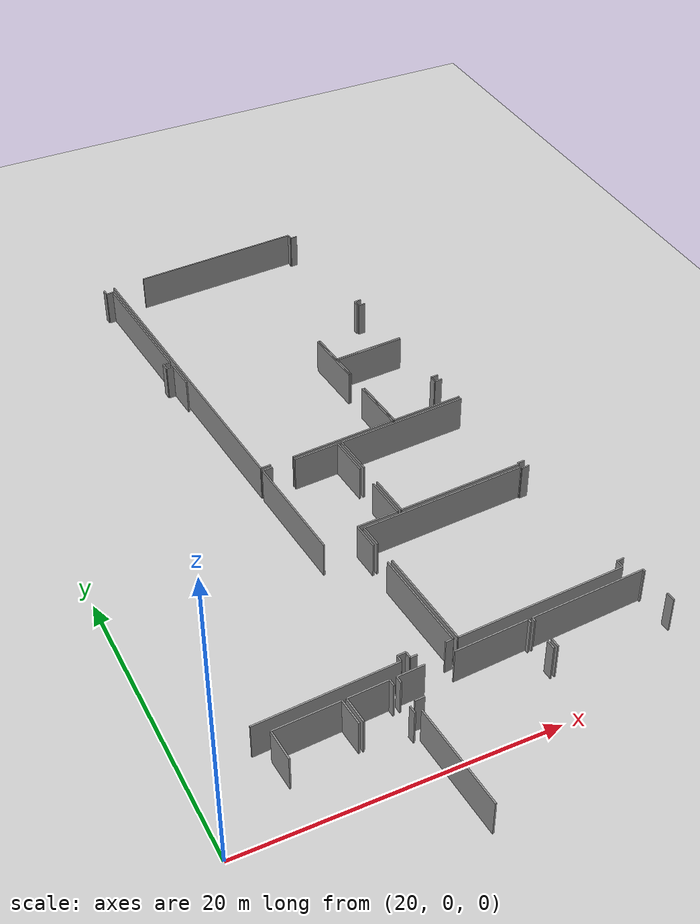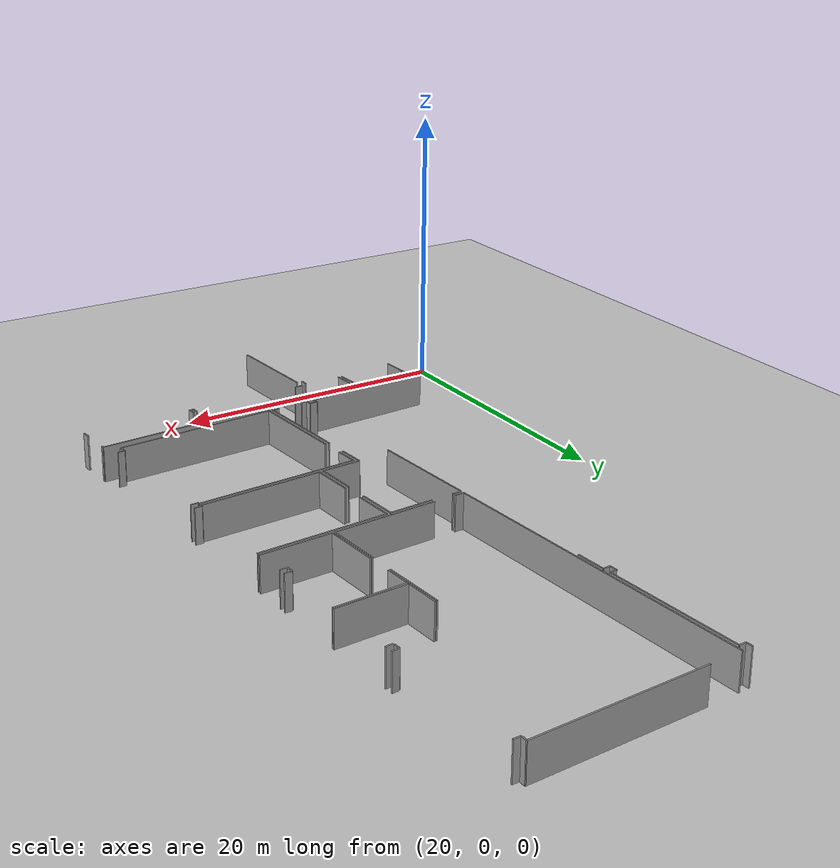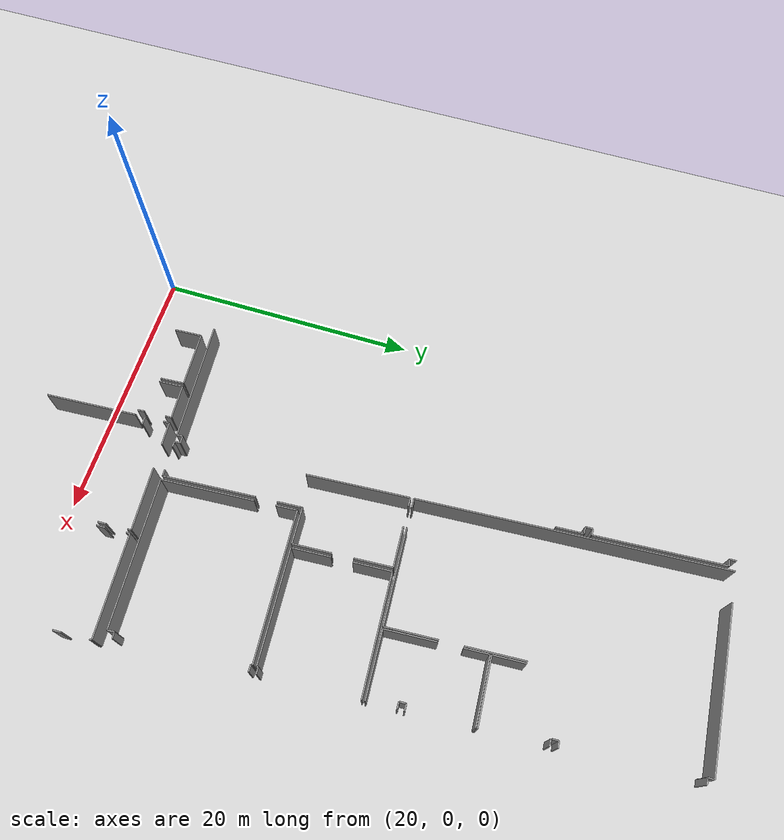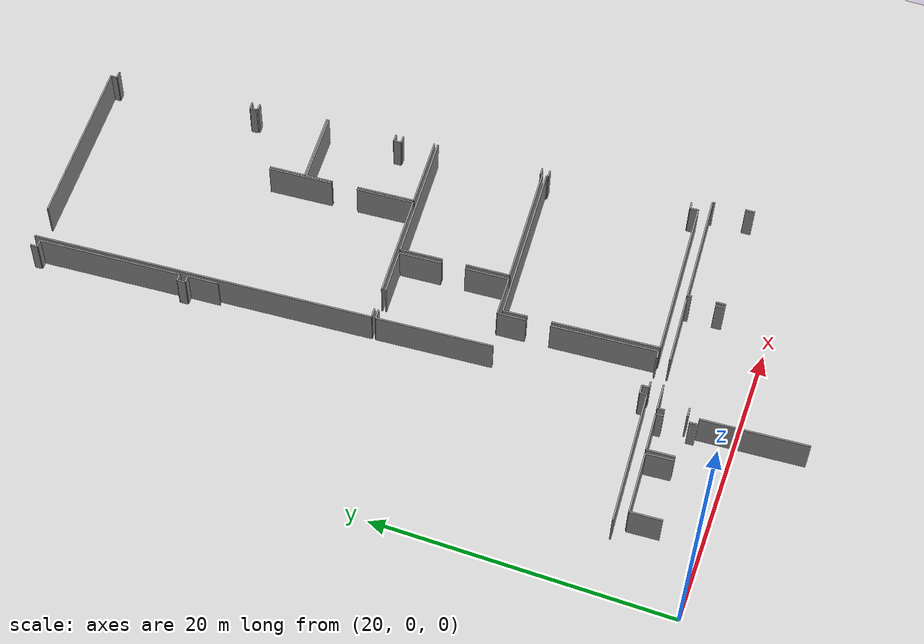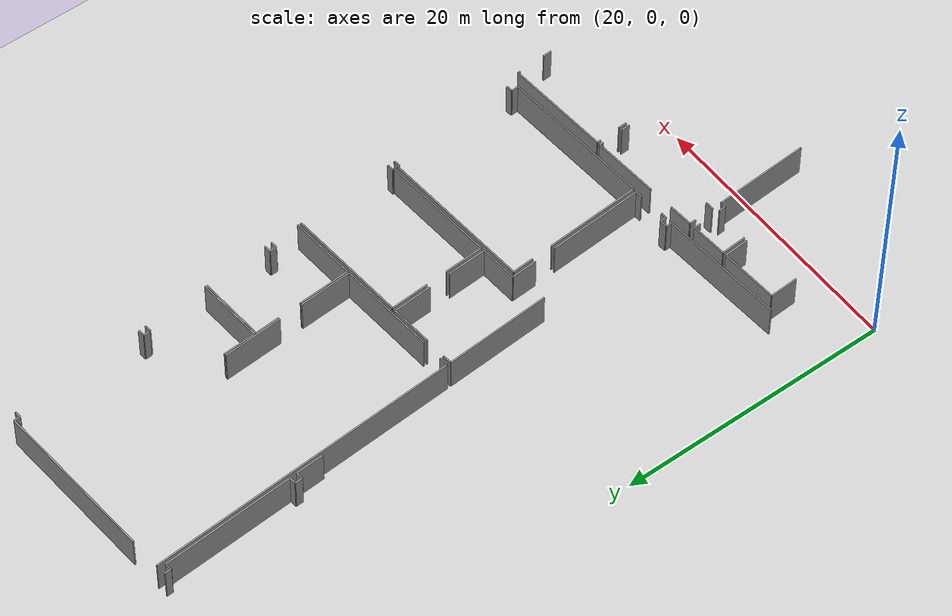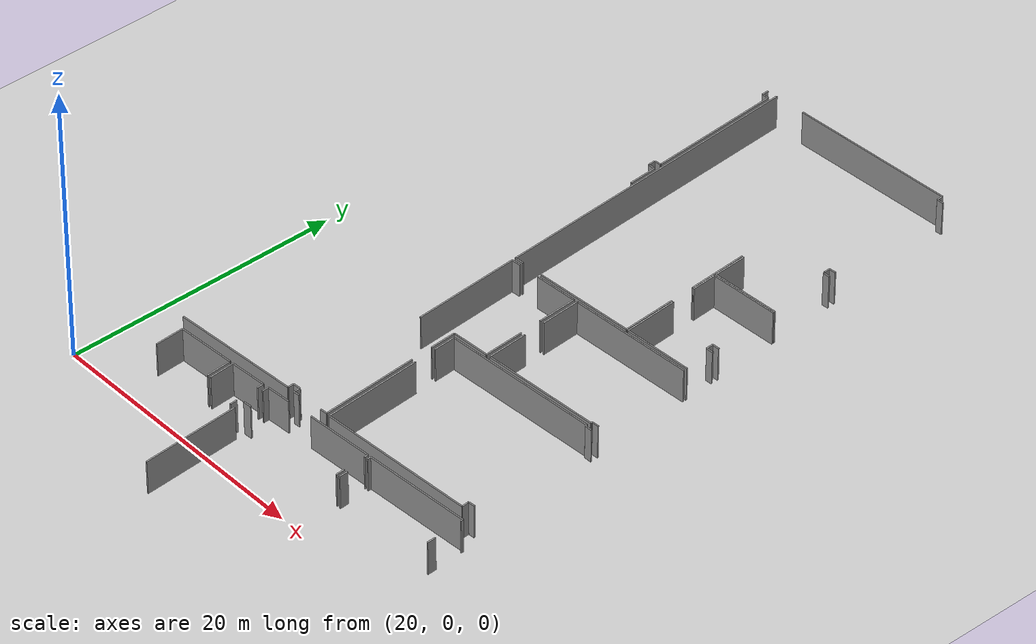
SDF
<sdf version="1.6">
 <world name="default">
  <model name="ground_plane">
   <static>1</static>
   <link name="link">
    <collision name="collision">
     <geometry><plane><normal>0 0 1</normal><size>100 100</size></plane></geometry>
     <surface><friction><ode><mu>100</mu><mu2>50</mu2></ode></friction></surface>
    </collision>
    <visual name="visual">
     <cast_shadows>0</cast_shadows>
     <geometry><plane><normal>0 0 1</normal><size>100 100</size></plane></geometry>
     <material>
      <script><uri>file://media/materials/scripts/gazebo.material</uri><name>Gazebo/Grey</name></script>
     </material>
    </visual>
   </link>
  </model>
  <model name="50025632">
   <static>1</static>
   <link name="Wall_54">
    <collision name="Wall_54_Collision">
     <geometry><box><size>0.479779563982 0.1 2.5</size></box></geometry>
     <pose>0.239889781991 0 1.25 0 0 0</pose>
    </collision>
    <visual name="Wall_54_Visual">
     <pose>0.239889781991 0 1.25 0 0 0</pose>
     <geometry><box><size>0.479779563982 0.1 2.5</size></box></geometry>
     <material>
      <script><uri>file://media/materials/scripts/gazebo.material</uri><name>Gazebo/Grey</name></script>
      <ambient>1 1 1 1</ambient>
     </material>
    </visual>
    <pose>80.8174411146 -0.895959153346 0 0 0 -1.52551248687</pose>
   </link>
   <link name="Wall_55">
    <collision name="Wall_55_Collision">
     <geometry><box><size>0.501899361759 0.1 2.5</size></box></geometry>
     <pose>0.25094968088 0 1.25 0 0 0</pose>
    </collision>
    <visual name="Wall_55_Visual">
     <pose>0.25094968088 0 1.25 0 0 0</pose>
     <geometry><box><size>0.501899361759 0.1 2.5</size></box></geometry>
     <material>
      <script><uri>file://media/materials/scripts/gazebo.material</uri><name>Gazebo/Grey</name></script>
      <ambient>1 1 1 1</ambient>
     </material>
    </visual>
    <pose>80.839159951 -1.37524687712 0 0 0 0.0579325672675</pose>
   </link>
   <link name="Wall_56">
    <collision name="Wall_56_Collision">
     <geometry><box><size>9.74472032773 0.1 2.5</size></box></geometry>
     <pose>4.87236016386 0 1.25 0 0 0</pose>
    </collision>
    <visual name="Wall_56_Visual">
     <pose>4.87236016386 0 1.25 0 0 0</pose>
     <geometry><box><size>9.74472032773 0.1 2.5</size></box></geometry>
     <material>
      <script><uri>file://media/materials/scripts/gazebo.material</uri><name>Gazebo/Grey</name></script>
      <ambient>1 1 1 1</ambient>
     </material>
    </visual>
    <pose>81.3402173154 -1.3461868201 0 0 0 -1.50915956671</pose>
   </link>
   <link name="Wall_57">
    <collision name="Wall_57_Collision">
     <geometry><box><size>0.49380576322 0.1 2.5</size></box></geometry>
     <pose>0.24690288161 0 1.25 0 0 0</pose>
    </collision>
    <visual name="Wall_57_Visual">
     <pose>0.24690288161 0 1.25 0 0 0</pose>
     <geometry><box><size>0.49380576322 0.1 2.5</size></box></geometry>
     <material>
      <script><uri>file://media/materials/scripts/gazebo.material</uri><name>Gazebo/Grey</name></script>
      <ambient>1 1 1 1</ambient>
     </material>
    </visual>
    <pose>81.9404700667 -11.0724024716 0 0 0 -3.07389528142</pose>
   </link>
   <link name="Wall_58">
    <collision name="Wall_58_Collision">
     <geometry><box><size>0.543420236302 0.1 2.5</size></box></geometry>
     <pose>0.271710118151 0 1.25 0 0 0</pose>
    </collision>
    <visual name="Wall_58_Visual">
     <pose>0.271710118151 0 1.25 0 0 0</pose>
     <geometry><box><size>0.543420236302 0.1 2.5</size></box></geometry>
     <material>
      <script><uri>file://media/materials/scripts/gazebo.material</uri><name>Gazebo/Grey</name></script>
      <ambient>1 1 1 1</ambient>
     </material>
    </visual>
    <pose>81.4477954111 -11.1058062959 0 0 0 -1.52473627378</pose>
   </link>
   <link name="Wall_59">
    <collision name="Wall_59_Collision">
     <geometry><box><size>0.518772326722 0.1 2.5</size></box></geometry>
     <pose>0.259386163361 0 1.25 0 0 0</pose>
    </collision>
    <visual name="Wall_59_Visual">
     <pose>0.259386163361 0 1.25 0 0 0</pose>
     <geometry><box><size>0.518772326722 0.1 2.5</size></box></geometry>
     <material>
      <script><uri>file://media/materials/scripts/gazebo.material</uri><name>Gazebo/Grey</name></script>
      <ambient>1 1 1 1</ambient>
     </material>
    </visual>
    <pose>81.4728165266 -11.6486501934 0 0 0 0.0644347207641</pose>
   </link>
   <link name="Wall_60">
    <collision name="Wall_60_Collision">
     <geometry><box><size>2.08789175306 0.1 2.5</size></box></geometry>
     <pose>1.04394587653 0 1.25 0 0 0</pose>
    </collision>
    <visual name="Wall_60_Visual">
     <pose>1.04394587653 0 1.25 0 0 0</pose>
     <geometry><box><size>2.08789175306 0.1 2.5</size></box></geometry>
     <material>
      <script><uri>file://media/materials/scripts/gazebo.material</uri><name>Gazebo/Grey</name></script>
      <ambient>1 1 1 1</ambient>
     </material>
    </visual>
    <pose>81.9905122978 -11.6152463691 0 0 0 -1.51169400251</pose>
   </link>
   <link name="Wall_92">
    <collision name="Wall_92_Collision">
     <geometry><box><size>0.507438182719 0.1 2.5</size></box></geometry>
     <pose>0.25371909136 0 1.25 0 0 0</pose>
    </collision>
    <visual name="Wall_92_Visual">
     <pose>0.25371909136 0 1.25 0 0 0</pose>
     <geometry><box><size>0.507438182719 0.1 2.5</size></box></geometry>
     <material>
      <script><uri>file://media/materials/scripts/gazebo.material</uri><name>Gazebo/Grey</name></script>
      <ambient>1 1 1 1</ambient>
     </material>
    </visual>
    <pose>86.6989273943 -42.137197 0 0 0 -3.05714189617</pose>
   </link>
   <link name="Wall_93">
    <collision name="Wall_93_Collision">
     <geometry><box><size>0.445262769798 0.1 2.5</size></box></geometry>
     <pose>0.222631384899 0 1.25 0 0 0</pose>
    </collision>
    <visual name="Wall_93_Visual">
     <pose>0.222631384899 0 1.25 0 0 0</pose>
     <geometry><box><size>0.445262769798 0.1 2.5</size></box></geometry>
     <material>
      <script><uri>file://media/materials/scripts/gazebo.material</uri><name>Gazebo/Grey</name></script>
      <ambient>1 1 1 1</ambient>
     </material>
    </visual>
    <pose>84.3365276534 -42.3150120343 0 0 0 -3.08451187118</pose>
   </link>
   <link name="Wall_94">
    <collision name="Wall_94_Collision">
     <geometry><box><size>0.473582715754 0.1 2.5</size></box></geometry>
     <pose>0.236791357877 0 1.25 0 0 0</pose>
    </collision>
    <visual name="Wall_94_Visual">
     <pose>0.236791357877 0 1.25 0 0 0</pose>
     <geometry><box><size>0.473582715754 0.1 2.5</size></box></geometry>
     <material>
      <script><uri>file://media/materials/scripts/gazebo.material</uri><name>Gazebo/Grey</name></script>
      <ambient>1 1 1 1</ambient>
     </material>
    </visual>
    <pose>83.8919900678 -42.340414182 0 0 0 1.60083826507</pose>
   </link>
   <link name="Wall_95">
    <collision name="Wall_95_Collision">
     <geometry><box><size>0.561740872083 0.1 2.5</size></box></geometry>
     <pose>0.280870436042 0 1.25 0 0 0</pose>
    </collision>
    <visual name="Wall_95_Visual">
     <pose>0.280870436042 0 1.25 0 0 0</pose>
     <geometry><box><size>0.561740872083 0.1 2.5</size></box></geometry>
     <material>
      <script><uri>file://media/materials/scripts/gazebo.material</uri><name>Gazebo/Grey</name></script>
      <ambient>1 1 1 1</ambient>
     </material>
    </visual>
    <pose>83.877764865 -41.8670451587 0 0 0 -3.07506961006</pose>
   </link>
   <link name="Wall_96">
    <collision name="Wall_96_Collision">
     <geometry><box><size>0.452837370106 0.1 2.5</size></box></geometry>
     <pose>0.226418685053 0 1.25 0 0 0</pose>
    </collision>
    <visual name="Wall_96_Visual">
     <pose>0.226418685053 0 1.25 0 0 0</pose>
     <geometry><box><size>0.452837370106 0.1 2.5</size></box></geometry>
     <material>
      <script><uri>file://media/materials/scripts/gazebo.material</uri><name>Gazebo/Grey</name></script>
      <ambient>1 1 1 1</ambient>
     </material>
    </visual>
    <pose>83.3172664749 -41.9043863159 0 0 0 -1.54330605966</pose>
   </link>
   <link name="Wall_97">
    <collision name="Wall_97_Collision">
     <geometry><box><size>9.31632124275 0.1 2.5</size></box></geometry>
     <pose>4.65816062138 0 1.25 0 0 0</pose>
    </collision>
    <visual name="Wall_97_Visual">
     <pose>4.65816062138 0 1.25 0 0 0</pose>
     <geometry><box><size>9.31632124275 0.1 2.5</size></box></geometry>
     <material>
      <script><uri>file://media/materials/scripts/gazebo.material</uri><name>Gazebo/Grey</name></script>
      <ambient>1 1 1 1</ambient>
     </material>
    </visual>
    <pose>83.3297135273 -42.3570525888 0 0 0 -3.08009569043</pose>
   </link>
   <link name="Wall_107">
    <collision name="Wall_107_Collision">
     <geometry><box><size>7.83611641514 0.1 2.5</size></box></geometry>
     <pose>3.91805820757 0 1.25 0 0 0</pose>
    </collision>
    <visual name="Wall_107_Visual">
     <pose>3.91805820757 0 1.25 0 0 0</pose>
     <geometry><box><size>7.83611641514 0.1 2.5</size></box></geometry>
     <material>
      <script><uri>file://media/materials/scripts/gazebo.material</uri><name>Gazebo/Grey</name></script>
      <ambient>1 1 1 1</ambient>
     </material>
    </visual>
    <pose>83.5173083884 -32.107794014 0 0 0 1.63458713323</pose>
   </link>
   <link name="Wall_108">
    <collision name="Wall_108_Collision">
     <geometry><box><size>0.676853621348 0.1 2.5</size></box></geometry>
     <pose>0.338426810674 0 1.25 0 0 0</pose>
    </collision>
    <visual name="Wall_108_Visual">
     <pose>0.338426810674 0 1.25 0 0 0</pose>
     <geometry><box><size>0.676853621348 0.1 2.5</size></box></geometry>
     <material>
      <script><uri>file://media/materials/scripts/gazebo.material</uri><name>Gazebo/Grey</name></script>
      <ambient>1 1 1 1</ambient>
     </material>
    </visual>
    <pose>83.0177751529 -24.2876158179 0 0 0 0.0777649396027</pose>
   </link>
   <link name="Wall_109">
    <collision name="Wall_109_Collision">
     <geometry><box><size>3.12008265131 0.1 2.5</size></box></geometry>
     <pose>1.56004132565 0 1.25 0 0 0</pose>
    </collision>
    <visual name="Wall_109_Visual">
     <pose>1.56004132565 0 1.25 0 0 0</pose>
     <geometry><box><size>3.12008265131 0.1 2.5</size></box></geometry>
     <material>
      <script><uri>file://media/materials/scripts/gazebo.material</uri><name>Gazebo/Grey</name></script>
      <ambient>1 1 1 1</ambient>
     </material>
    </visual>
    <pose>85.2631980034 -24.1541275315 0 0 0 0.0602020310851</pose>
   </link>
   <link name="Wall_110">
    <collision name="Wall_110_Collision">
     <geometry><box><size>2.88792561653 0.1 2.5</size></box></geometry>
     <pose>1.44396280826 0 1.25 0 0 0</pose>
    </collision>
    <visual name="Wall_110_Visual">
     <pose>1.44396280826 0 1.25 0 0 0</pose>
     <geometry><box><size>2.88792561653 0.1 2.5</size></box></geometry>
     <material>
      <script><uri>file://media/materials/scripts/gazebo.material</uri><name>Gazebo/Grey</name></script>
      <ambient>1 1 1 1</ambient>
     </material>
    </visual>
    <pose>88.3776283285 -23.9664056596 0 0 0 -1.5095379719</pose>
   </link>
   <link name="Wall_111">
    <collision name="Wall_111_Collision">
     <geometry><box><size>2.9385904563 0.1 2.5</size></box></geometry>
     <pose>1.46929522815 0 1.25 0 0 0</pose>
    </collision>
    <visual name="Wall_111_Visual">
     <pose>1.46929522815 0 1.25 0 0 0</pose>
     <geometry><box><size>2.9385904563 0.1 2.5</size></box></geometry>
     <material>
      <script><uri>file://media/materials/scripts/gazebo.material</uri><name>Gazebo/Grey</name></script>
      <ambient>1 1 1 1</ambient>
     </material>
    </visual>
    <pose>88.6548927712 -28.4581404358 0 0 0 -1.5145785697</pose>
   </link>
   <link name="Wall_112">
    <collision name="Wall_112_Collision">
     <geometry><box><size>2.79838988058 0.1 2.5</size></box></geometry>
     <pose>1.39919494029 0 1.25 0 0 0</pose>
    </collision>
    <visual name="Wall_112_Visual">
     <pose>1.39919494029 0 1.25 0 0 0</pose>
     <geometry><box><size>2.79838988058 0.1 2.5</size></box></geometry>
     <material>
      <script><uri>file://media/materials/scripts/gazebo.material</uri><name>Gazebo/Grey</name></script>
      <ambient>1 1 1 1</ambient>
     </material>
    </visual>
    <pose>88.8200067316 -31.3920885011 0 0 0 -3.08710119735</pose>
   </link>
   <link name="Wall_113">
    <collision name="Wall_113_Collision">
     <geometry><box><size>1.92126571458 0.1 2.5</size></box></geometry>
     <pose>0.960632857288 0 1.25 0 0 0</pose>
    </collision>
    <visual name="Wall_113_Visual">
     <pose>0.960632857288 0 1.25 0 0 0</pose>
     <geometry><box><size>1.92126571458 0.1 2.5</size></box></geometry>
     <material>
      <script><uri>file://media/materials/scripts/gazebo.material</uri><name>Gazebo/Grey</name></script>
      <ambient>1 1 1 1</ambient>
     </material>
    </visual>
    <pose>86.0257704789 -31.5445013876 0 0 0 -1.51126410672</pose>
   </link>
   <link name="Wall_114">
    <collision name="Wall_114_Collision">
     <geometry><box><size>7.08674853534 0.1 2.5</size></box></geometry>
     <pose>3.54337426767 0 1.25 0 0 0</pose>
    </collision>
    <visual name="Wall_114_Visual">
     <pose>3.54337426767 0 1.25 0 0 0</pose>
     <geometry><box><size>7.08674853534 0.1 2.5</size></box></geometry>
     <material>
      <script><uri>file://media/materials/scripts/gazebo.material</uri><name>Gazebo/Grey</name></script>
      <ambient>1 1 1 1</ambient>
     </material>
    </visual>
    <pose>86.2413077026 -35.065239066 0 0 0 -1.50617736674</pose>
   </link>
   <link name="Wall_121">
    <collision name="Wall_121_Collision">
     <geometry><box><size>11.399347907 0.1 2.5</size></box></geometry>
     <pose>5.69967395349 0 1.25 0 0 0</pose>
    </collision>
    <visual name="Wall_121_Visual">
     <pose>5.69967395349 0 1.25 0 0 0</pose>
     <geometry><box><size>11.399347907 0.1 2.5</size></box></geometry>
     <material>
      <script><uri>file://media/materials/scripts/gazebo.material</uri><name>Gazebo/Grey</name></script>
      <ambient>1 1 1 1</ambient>
     </material>
    </visual>
    <pose>98.3712142862 -41.5142093264 0 0 0 -3.08356634943</pose>
   </link>
   <link name="Wall_122">
    <collision name="Wall_122_Collision">
     <geometry><box><size>7.13300318118 0.1 2.5</size></box></geometry>
     <pose>3.56650159059 0 1.25 0 0 0</pose>
    </collision>
    <visual name="Wall_122_Visual">
     <pose>3.56650159059 0 1.25 0 0 0</pose>
     <geometry><box><size>7.13300318118 0.1 2.5</size></box></geometry>
     <material>
      <script><uri>file://media/materials/scripts/gazebo.material</uri><name>Gazebo/Grey</name></script>
      <ambient>1 1 1 1</ambient>
     </material>
    </visual>
    <pose>86.9910520935 -42.1753002216 0 0 0 1.63497783764</pose>
   </link>
   <link name="Wall_123">
    <collision name="Wall_123_Collision">
     <geometry><box><size>1.61687430629 0.1 2.5</size></box></geometry>
     <pose>0.808437153145 0 1.25 0 0 0</pose>
    </collision>
    <visual name="Wall_123_Visual">
     <pose>0.808437153145 0 1.25 0 0 0</pose>
     <geometry><box><size>1.61687430629 0.1 2.5</size></box></geometry>
     <material>
      <script><uri>file://media/materials/scripts/gazebo.material</uri><name>Gazebo/Grey</name></script>
      <ambient>1 1 1 1</ambient>
     </material>
    </visual>
    <pose>86.4238221342 -33.4405176958 0 0 0 1.63619925181</pose>
   </link>
   <link name="Wall_124">
    <collision name="Wall_124_Collision">
     <geometry><box><size>11.3680105583 0.1 2.5</size></box></geometry>
     <pose>5.68400527914 0 1.25 0 0 0</pose>
    </collision>
    <visual name="Wall_124_Visual">
     <pose>5.68400527914 0 1.25 0 0 0</pose>
     <geometry><box><size>11.3680105583 0.1 2.5</size></box></geometry>
     <material>
      <script><uri>file://media/materials/scripts/gazebo.material</uri><name>Gazebo/Grey</name></script>
      <ambient>1 1 1 1</ambient>
     </material>
    </visual>
    <pose>86.3181491995 -31.8271002813 0 0 0 0.0609733758318</pose>
   </link>
   <link name="Wall_125">
    <collision name="Wall_125_Collision">
     <geometry><box><size>0.124242473357 0.1 2.5</size></box></geometry>
     <pose>0.0621212366783 0 1.25 0 0 0</pose>
    </collision>
    <visual name="Wall_125_Visual">
     <pose>0.0621212366783 0 1.25 0 0 0</pose>
     <geometry><box><size>0.124242473357 0.1 2.5</size></box></geometry>
     <material>
      <script><uri>file://media/materials/scripts/gazebo.material</uri><name>Gazebo/Grey</name></script>
      <ambient>1 1 1 1</ambient>
     </material>
    </visual>
    <pose>97.6650345787 -31.1343837121 0 0 0 -1.458107047</pose>
   </link>
   <link name="Wall_126">
    <collision name="Wall_126_Collision">
     <geometry><box><size>0.53134895122 0.1 2.5</size></box></geometry>
     <pose>0.26567447561 0 1.25 0 0 0</pose>
    </collision>
    <visual name="Wall_126_Visual">
     <pose>0.26567447561 0 1.25 0 0 0</pose>
     <geometry><box><size>0.53134895122 0.1 2.5</size></box></geometry>
     <material>
      <script><uri>file://media/materials/scripts/gazebo.material</uri><name>Gazebo/Grey</name></script>
      <ambient>1 1 1 1</ambient>
     </material>
    </visual>
    <pose>97.6790057599 -31.2578381502 0 0 0 0.0408862926102</pose>
   </link>
   <link name="Wall_127">
    <collision name="Wall_127_Collision">
     <geometry><box><size>0.4904934381 0.1 2.5</size></box></geometry>
     <pose>0.24524671905 0 1.25 0 0 0</pose>
    </collision>
    <visual name="Wall_127_Visual">
     <pose>0.24524671905 0 1.25 0 0 0</pose>
     <geometry><box><size>0.4904934381 0.1 2.5</size></box></geometry>
     <material>
      <script><uri>file://media/materials/scripts/gazebo.material</uri><name>Gazebo/Grey</name></script>
      <ambient>1 1 1 1</ambient>
     </material>
    </visual>
    <pose>98.8221024088 -40.9316110677 0 0 0 -3.06331138946</pose>
   </link>
   <link name="Wall_128">
    <collision name="Wall_128_Collision">
     <geometry><box><size>0.545573220142 0.1 2.5</size></box></geometry>
     <pose>0.272786610071 0 1.25 0 0 0</pose>
    </collision>
    <visual name="Wall_128_Visual">
     <pose>0.272786610071 0 1.25 0 0 0</pose>
     <geometry><box><size>0.545573220142 0.1 2.5</size></box></geometry>
     <material>
      <script><uri>file://media/materials/scripts/gazebo.material</uri><name>Gazebo/Grey</name></script>
      <ambient>1 1 1 1</ambient>
     </material>
    </visual>
    <pose>98.3331110645 -40.9699683108 0 0 0 -1.50089871346</pose>
   </link>
   <link name="Wall_129">
    <collision name="Wall_129_Collision">
     <geometry><box><size>9.0804689267 0.1 2.5</size></box></geometry>
     <pose>4.54023446335 0 1.25 0 0 0</pose>
    </collision>
    <visual name="Wall_129_Visual">
     <pose>4.54023446335 0 1.25 0 0 0</pose>
     <geometry><box><size>9.0804689267 0.1 2.5</size></box></geometry>
     <material>
      <script><uri>file://media/materials/scripts/gazebo.material</uri><name>Gazebo/Grey</name></script>
      <ambient>1 1 1 1</ambient>
     </material>
    </visual>
    <pose>97.7234595185 -23.3859665835 0 0 0 -3.07996781898</pose>
   </link>
   <link name="Wall_130">
    <collision name="Wall_130_Collision">
     <geometry><box><size>2.88815155545 0.1 2.5</size></box></geometry>
     <pose>1.44407577772 0 1.25 0 0 0</pose>
    </collision>
    <visual name="Wall_130_Visual">
     <pose>1.44407577772 0 1.25 0 0 0</pose>
     <geometry><box><size>2.88815155545 0.1 2.5</size></box></geometry>
     <material>
      <script><uri>file://media/materials/scripts/gazebo.material</uri><name>Gazebo/Grey</name></script>
      <ambient>1 1 1 1</ambient>
     </material>
    </visual>
    <pose>88.6602272222 -23.9451948662 0 0 0 -1.5104239286</pose>
   </link>
   <link name="Wall_131">
    <collision name="Wall_131_Collision">
     <geometry><box><size>2.95228946685 0.1 2.5</size></box></geometry>
     <pose>1.47614473342 0 1.25 0 0 0</pose>
    </collision>
    <visual name="Wall_131_Visual">
     <pose>1.47614473342 0 1.25 0 0 0</pose>
     <geometry><box><size>2.95228946685 0.1 2.5</size></box></geometry>
     <material>
      <script><uri>file://media/materials/scripts/gazebo.material</uri><name>Gazebo/Grey</name></script>
      <ambient>1 1 1 1</ambient>
     </material>
    </visual>
    <pose>88.9292359669 -28.4093683121 0 0 0 -1.51182324349</pose>
   </link>
   <link name="Wall_132">
    <collision name="Wall_132_Collision">
     <geometry><box><size>8.61389348744 0.1 2.5</size></box></geometry>
     <pose>4.30694674372 0 1.25 0 0 0</pose>
    </collision>
    <visual name="Wall_132_Visual">
     <pose>4.30694674372 0 1.25 0 0 0</pose>
     <geometry><box><size>8.61389348744 0.1 2.5</size></box></geometry>
     <material>
      <script><uri>file://media/materials/scripts/gazebo.material</uri><name>Gazebo/Grey</name></script>
      <ambient>1 1 1 1</ambient>
     </material>
    </visual>
    <pose>89.103240679 -31.3565254942 0 0 0 0.0595454766969</pose>
   </link>
   <link name="Wall_133">
    <collision name="Wall_133_Collision">
     <geometry><box><size>0.124391700525 0.1 2.5</size></box></geometry>
     <pose>0.0621958502627 0 1.25 0 0 0</pose>
    </collision>
    <visual name="Wall_133_Visual">
     <pose>0.0621958502627 0 1.25 0 0 0</pose>
     <geometry><box><size>0.124391700525 0.1 2.5</size></box></geometry>
     <material>
      <script><uri>file://media/materials/scripts/gazebo.material</uri><name>Gazebo/Grey</name></script>
      <ambient>1 1 1 1</ambient>
     </material>
    </visual>
    <pose>97.7018676929 -30.8439101526 0 0 0 1.69363156567</pose>
   </link>
   <link name="Wall_134">
    <collision name="Wall_134_Collision">
     <geometry><box><size>0.512541147007 0.1 2.5</size></box></geometry>
     <pose>0.256270573503 0 1.25 0 0 0</pose>
    </collision>
    <visual name="Wall_134_Visual">
     <pose>0.256270573503 0 1.25 0 0 0</pose>
     <geometry><box><size>0.512541147007 0.1 2.5</size></box></geometry>
     <material>
      <script><uri>file://media/materials/scripts/gazebo.material</uri><name>Gazebo/Grey</name></script>
      <ambient>1 1 1 1</ambient>
     </material>
    </visual>
    <pose>97.6866264043 -30.7204557145 0 0 0 0.0518146224754</pose>
   </link>
   <link name="Wall_135">
    <collision name="Wall_135_Collision">
     <geometry><box><size>7.34070342086 0.1 2.5</size></box></geometry>
     <pose>3.67035171043 0 1.25 0 0 0</pose>
    </collision>
    <visual name="Wall_135_Visual">
     <pose>3.67035171043 0 1.25 0 0 0</pose>
     <geometry><box><size>7.34070342086 0.1 2.5</size></box></geometry>
     <material>
      <script><uri>file://media/materials/scripts/gazebo.material</uri><name>Gazebo/Grey</name></script>
      <ambient>1 1 1 1</ambient>
     </material>
    </visual>
    <pose>92.5877802968 -23.4316904494 0 0 0 -3.07851871746</pose>
   </link>
   <link name="Wall_136">
    <collision name="Wall_136_Collision">
     <geometry><box><size>0.674234446074 0.1 2.5</size></box></geometry>
     <pose>0.337117223037 0 1.25 0 0 0</pose>
    </collision>
    <visual name="Wall_136_Visual">
     <pose>0.337117223037 0 1.25 0 0 0</pose>
     <geometry><box><size>0.674234446074 0.1 2.5</size></box></geometry>
     <material>
      <script><uri>file://media/materials/scripts/gazebo.material</uri><name>Gazebo/Grey</name></script>
      <ambient>1 1 1 1</ambient>
     </material>
    </visual>
    <pose>83.6760718119 -23.9746613576 0 0 0 -3.08504921664</pose>
   </link>
   <link name="Wall_137">
    <collision name="Wall_137_Collision">
     <geometry><box><size>23.2206510091 0.1 2.5</size></box></geometry>
     <pose>11.6103255045 0 1.25 0 0 0</pose>
    </collision>
    <visual name="Wall_137_Visual">
     <pose>11.6103255045 0 1.25 0 0 0</pose>
     <geometry><box><size>23.2206510091 0.1 2.5</size></box></geometry>
     <material>
      <script><uri>file://media/materials/scripts/gazebo.material</uri><name>Gazebo/Grey</name></script>
      <ambient>1 1 1 1</ambient>
     </material>
    </visual>
    <pose>83.0029148965 -24.0127645792 0 0 0 1.63196418825</pose>
   </link>
   <link name="Wall_138">
    <collision name="Wall_138_Collision">
     <geometry><box><size>11.9778933044 0.1 2.5</size></box></geometry>
     <pose>5.98894665222 0 1.25 0 0 0</pose>
    </collision>
    <visual name="Wall_138_Visual">
     <pose>5.98894665222 0 1.25 0 0 0</pose>
     <geometry><box><size>11.9778933044 0.1 2.5</size></box></geometry>
     <material>
      <script><uri>file://media/materials/scripts/gazebo.material</uri><name>Gazebo/Grey</name></script>
      <ambient>1 1 1 1</ambient>
     </material>
    </visual>
    <pose>83.8787809509 -0.71068858872 0 0 0 0.0593682230151</pose>
   </link>
   <link name="Wall_139">
    <collision name="Wall_139_Collision">
     <geometry><box><size>0.441781452622 0.1 2.5</size></box></geometry>
     <pose>0.220890726311 0 1.25 0 0 0</pose>
    </collision>
    <visual name="Wall_139_Visual">
     <pose>0.220890726311 0 1.25 0 0 0</pose>
     <geometry><box><size>0.441781452622 0.1 2.5</size></box></geometry>
     <material>
      <script><uri>file://media/materials/scripts/gazebo.material</uri><name>Gazebo/Grey</name></script>
      <ambient>1 1 1 1</ambient>
     </material>
    </visual>
    <pose>95.8355718976 -0.0 0 0 0 -1.57079632679</pose>
   </link>
   <link name="Wall_140">
    <collision name="Wall_140_Collision">
     <geometry><box><size>0.490129774459 0.1 2.5</size></box></geometry>
     <pose>0.24506488723 0 1.25 0 0 0</pose>
    </collision>
    <visual name="Wall_140_Visual">
     <pose>0.24506488723 0 1.25 0 0 0</pose>
     <geometry><box><size>0.490129774459 0.1 2.5</size></box></geometry>
     <material>
      <script><uri>file://media/materials/scripts/gazebo.material</uri><name>Gazebo/Grey</name></script>
      <ambient>1 1 1 1</ambient>
     </material>
    </visual>
    <pose>95.8355718976 -0.441781452622 0 0 0 0.0391915401556</pose>
   </link>
   <link name="Wall_141">
    <collision name="Wall_141_Collision">
     <geometry><box><size>0.498954586553 0.1 2.5</size></box></geometry>
     <pose>0.249477293277 0 1.25 0 0 0</pose>
    </collision>
    <visual name="Wall_141_Visual">
     <pose>0.249477293277 0 1.25 0 0 0</pose>
     <geometry><box><size>0.498954586553 0.1 2.5</size></box></geometry>
     <material>
      <script><uri>file://media/materials/scripts/gazebo.material</uri><name>Gazebo/Grey</name></script>
      <ambient>1 1 1 1</ambient>
     </material>
    </visual>
    <pose>96.9150361663 -10.138746531 0 0 0 -3.05289169546</pose>
   </link>
   <link name="Wall_142">
    <collision name="Wall_142_Collision">
     <geometry><box><size>0.451571477082 0.1 2.5</size></box></geometry>
     <pose>0.225785738541 0 1.25 0 0 0</pose>
    </collision>
    <visual name="Wall_142_Visual">
     <pose>0.225785738541 0 1.25 0 0 0</pose>
     <geometry><box><size>0.451571477082 0.1 2.5</size></box></geometry>
     <material>
      <script><uri>file://media/materials/scripts/gazebo.material</uri><name>Gazebo/Grey</name></script>
      <ambient>1 1 1 1</ambient>
     </material>
    </visual>
    <pose>96.4180431455 -10.1829462681 0 0 0 -1.52718660622</pose>
   </link>
   <link name="Wall_143">
    <collision name="Wall_143_Collision">
     <geometry><box><size>4.39133905929 0.1 2.5</size></box></geometry>
     <pose>2.19566952964 0 1.25 0 0 0</pose>
    </collision>
    <visual name="Wall_143_Visual">
     <pose>2.19566952964 0 1.25 0 0 0</pose>
     <geometry><box><size>4.39133905929 0.1 2.5</size></box></geometry>
     <material>
      <script><uri>file://media/materials/scripts/gazebo.material</uri><name>Gazebo/Grey</name></script>
      <ambient>1 1 1 1</ambient>
     </material>
    </visual>
    <pose>91.9918459106 -13.3677405425 0 0 0 -1.50920923822</pose>
   </link>
   <link name="Wall_144">
    <collision name="Wall_144_Collision">
     <geometry><box><size>3.91600226727 0.1 2.5</size></box></geometry>
     <pose>1.95800113364 0 1.25 0 0 0</pose>
    </collision>
    <visual name="Wall_144_Visual">
     <pose>1.95800113364 0 1.25 0 0 0</pose>
     <geometry><box><size>3.91600226727 0.1 2.5</size></box></geometry>
     <material>
      <script><uri>file://media/materials/scripts/gazebo.material</uri><name>Gazebo/Grey</name></script>
      <ambient>1 1 1 1</ambient>
     </material>
    </visual>
    <pose>92.3581448811 -19.5224269212 0 0 0 -1.51212240089</pose>
   </link>
   <link name="Wall_145">
    <collision name="Wall_145_Collision">
     <geometry><box><size>0.500237772629 0.1 2.5</size></box></geometry>
     <pose>0.250118886315 0 1.25 0 0 0</pose>
    </collision>
    <visual name="Wall_145_Visual">
     <pose>0.250118886315 0 1.25 0 0 0</pose>
     <geometry><box><size>0.500237772629 0.1 2.5</size></box></geometry>
     <material>
      <script><uri>file://media/materials/scripts/gazebo.material</uri><name>Gazebo/Grey</name></script>
      <ambient>1 1 1 1</ambient>
     </material>
    </visual>
    <pose>96.9592359034 -10.6890840621 0 0 0 -3.08392522931</pose>
   </link>
   <link name="Wall_146">
    <collision name="Wall_146_Collision">
     <geometry><box><size>2.44435767826 0.1 2.5</size></box></geometry>
     <pose>1.22217883913 0 1.25 0 0 0</pose>
    </collision>
    <visual name="Wall_146_Visual">
     <pose>1.22217883913 0 1.25 0 0 0</pose>
     <geometry><box><size>2.44435767826 0.1 2.5</size></box></geometry>
     <material>
      <script><uri>file://media/materials/scripts/gazebo.material</uri><name>Gazebo/Grey</name></script>
      <ambient>1 1 1 1</ambient>
     </material>
    </visual>
    <pose>92.1328278306 -13.3638032096 0 0 0 -1.51657466558</pose>
   </link>
   <link name="Wall_147">
    <collision name="Wall_147_Collision">
     <geometry><box><size>5.00092993092 0.1 2.5</size></box></geometry>
     <pose>2.50046496546 0 1.25 0 0 0</pose>
    </collision>
    <visual name="Wall_147_Visual">
     <pose>2.50046496546 0 1.25 0 0 0</pose>
     <geometry><box><size>5.00092993092 0.1 2.5</size></box></geometry>
     <material>
      <script><uri>file://media/materials/scripts/gazebo.material</uri><name>Gazebo/Grey</name></script>
      <ambient>1 1 1 1</ambient>
     </material>
    </visual>
    <pose>92.2653000311 -15.8045685763 0 0 0 0.0596685523598</pose>
   </link>
   <link name="Wall_148">
    <collision name="Wall_148_Collision">
     <geometry><box><size>0.5085234 0.1 2.5</size></box></geometry>
     <pose>0.2542617 0 1.25 0 0 0</pose>
    </collision>
    <visual name="Wall_148_Visual">
     <pose>0.2542617 0 1.25 0 0 0</pose>
     <geometry><box><size>0.5085234 0.1 2.5</size></box></geometry>
     <material>
      <script><uri>file://media/materials/scripts/gazebo.material</uri><name>Gazebo/Grey</name></script>
      <ambient>1 1 1 1</ambient>
     </material>
    </visual>
    <pose>97.599751059 -20.940247798 0 0 0 -3.09812006011</pose>
   </link>
   <link name="Wall_149">
    <collision name="Wall_149_Collision">
     <geometry><box><size>0.5085234 0.1 2.5</size></box></geometry>
     <pose>0.2542617 0 1.25 0 0 0</pose>
    </collision>
    <visual name="Wall_149_Visual">
     <pose>0.2542617 0 1.25 0 0 0</pose>
     <geometry><box><size>0.5085234 0.1 2.5</size></box></geometry>
     <material>
      <script><uri>file://media/materials/scripts/gazebo.material</uri><name>Gazebo/Grey</name></script>
      <ambient>1 1 1 1</ambient>
     </material>
    </visual>
    <pose>97.0917081039 -20.9623476665 0 0 0 1.61426892028</pose>
   </link>
   <link name="Wall_150">
    <collision name="Wall_150_Collision">
     <geometry><box><size>0.519563116392 0.1 2.5</size></box></geometry>
     <pose>0.259781558196 0 1.25 0 0 0</pose>
    </collision>
    <visual name="Wall_150_Visual">
     <pose>0.259781558196 0 1.25 0 0 0</pose>
     <geometry><box><size>0.519563116392 0.1 2.5</size></box></geometry>
     <material>
      <script><uri>file://media/materials/scripts/gazebo.material</uri><name>Gazebo/Grey</name></script>
      <ambient>1 1 1 1</ambient>
     </material>
    </visual>
    <pose>97.0696082354 -20.4543047115 0 0 0 0.0425483206433</pose>
   </link>
   <link name="Wall_151">
    <collision name="Wall_151_Collision">
     <geometry><box><size>4.99476243925 0.1 2.5</size></box></geometry>
     <pose>2.49738121963 0 1.25 0 0 0</pose>
    </collision>
    <visual name="Wall_151_Visual">
     <pose>2.49738121963 0 1.25 0 0 0</pose>
     <geometry><box><size>4.99476243925 0.1 2.5</size></box></geometry>
     <material>
      <script><uri>file://media/materials/scripts/gazebo.material</uri><name>Gazebo/Grey</name></script>
      <ambient>1 1 1 1</ambient>
     </material>
    </visual>
    <pose>97.2573301073 -15.6278966387 0 0 0 -3.08386267983</pose>
   </link>
   <link name="Wall_152">
    <collision name="Wall_152_Collision">
     <geometry><box><size>1.84092251699 0.1 2.5</size></box></geometry>
     <pose>0.920461258497 0 1.25 0 0 0</pose>
    </collision>
    <visual name="Wall_152_Visual">
     <pose>0.920461258497 0 1.25 0 0 0</pose>
     <geometry><box><size>1.84092251699 0.1 2.5</size></box></geometry>
     <material>
      <script><uri>file://media/materials/scripts/gazebo.material</uri><name>Gazebo/Grey</name></script>
      <ambient>1 1 1 1</ambient>
     </material>
    </visual>
    <pose>92.2708885036 -15.9160840049 0 0 0 -1.50728008222</pose>
   </link>
   <link name="Wall_153">
    <collision name="Wall_153_Collision">
     <geometry><box><size>3.89612912447 0.1 2.5</size></box></geometry>
     <pose>1.94806456223 0 1.25 0 0 0</pose>
    </collision>
    <visual name="Wall_153_Visual">
     <pose>1.94806456223 0 1.25 0 0 0</pose>
     <geometry><box><size>3.89612912447 0.1 2.5</size></box></geometry>
     <material>
      <script><uri>file://media/materials/scripts/gazebo.material</uri><name>Gazebo/Grey</name></script>
      <ambient>1 1 1 1</ambient>
     </material>
    </visual>
    <pose>92.4963325649 -19.5320797373 0 0 0 -1.50898146128</pose>
   </link>
   <link name="Wall_154">
    <collision name="Wall_154_Collision">
     <geometry><box><size>5.00332682097 0.1 2.5</size></box></geometry>
     <pose>2.50166341049 0 1.25 0 0 0</pose>
    </collision>
    <visual name="Wall_154_Visual">
     <pose>2.50166341049 0 1.25 0 0 0</pose>
     <geometry><box><size>5.00332682097 0.1 2.5</size></box></geometry>
     <material>
      <script><uri>file://media/materials/scripts/gazebo.material</uri><name>Gazebo/Grey</name></script>
      <ambient>1 1 1 1</ambient>
     </material>
    </visual>
    <pose>92.7370179149 -23.4207675259 0 0 0 0.0565376985249</pose>
   </link>
   <link name="Wall_158">
    <collision name="Wall_158_Collision">
     <geometry><box><size>0.62492321843 0.1 2.5</size></box></geometry>
     <pose>0.312461609215 0 1.25 0 0 0</pose>
    </collision>
    <visual name="Wall_158_Visual">
     <pose>0.312461609215 0 1.25 0 0 0</pose>
     <geometry><box><size>0.62492321843 0.1 2.5</size></box></geometry>
     <material>
      <script><uri>file://media/materials/scripts/gazebo.material</uri><name>Gazebo/Grey</name></script>
      <ambient>1 1 1 1</ambient>
     </material>
    </visual>
    <pose>83.2737017915 -45.1667841516 0 0 0 -3.0954403028</pose>
   </link>
   <link name="Wall_159">
    <collision name="Wall_159_Collision">
     <geometry><box><size>0.476326932698 0.1 2.5</size></box></geometry>
     <pose>0.238163466349 0 1.25 0 0 0</pose>
    </collision>
    <visual name="Wall_159_Visual">
     <pose>0.238163466349 0 1.25 0 0 0</pose>
     <geometry><box><size>0.476326932698 0.1 2.5</size></box></geometry>
     <material>
      <script><uri>file://media/materials/scripts/gazebo.material</uri><name>Gazebo/Grey</name></script>
      <ambient>1 1 1 1</ambient>
     </material>
    </visual>
    <pose>82.6001638439 -43.7338489969 0 0 0 1.60573407869</pose>
   </link>
   <link name="Wall_160">
    <collision name="Wall_160_Collision">
     <geometry><box><size>1.79870490325 0.1 2.5</size></box></geometry>
     <pose>0.899352451623 0 1.25 0 0 0</pose>
    </collision>
    <visual name="Wall_160_Visual">
     <pose>0.899352451623 0 1.25 0 0 0</pose>
     <geometry><box><size>1.79870490325 0.1 2.5</size></box></geometry>
     <material>
      <script><uri>file://media/materials/scripts/gazebo.material</uri><name>Gazebo/Grey</name></script>
      <ambient>1 1 1 1</ambient>
     </material>
    </visual>
    <pose>82.5835254371 -43.2578127481 0 0 0 0.0604102764177</pose>
   </link>
   <link name="Wall_161">
    <collision name="Wall_161_Collision">
     <geometry><box><size>4.93105247857 0.1 2.5</size></box></geometry>
     <pose>2.46552623928 0 1.25 0 0 0</pose>
    </collision>
    <visual name="Wall_161_Visual">
     <pose>2.46552623928 0 1.25 0 0 0</pose>
     <geometry><box><size>4.93105247857 0.1 2.5</size></box></geometry>
     <material>
      <script><uri>file://media/materials/scripts/gazebo.material</uri><name>Gazebo/Grey</name></script>
      <ambient>1 1 1 1</ambient>
     </material>
    </visual>
    <pose>86.301383782 -43.0180164733 0 0 0 0.0595861976154</pose>
   </link>
   <link name="Wall_162">
    <collision name="Wall_162_Collision">
     <geometry><box><size>0.290834208314 0.1 2.5</size></box></geometry>
     <pose>0.145417104157 0 1.25 0 0 0</pose>
    </collision>
    <visual name="Wall_162_Visual">
     <pose>0.145417104157 0 1.25 0 0 0</pose>
     <geometry><box><size>0.290834208314 0.1 2.5</size></box></geometry>
     <material>
      <script><uri>file://media/materials/scripts/gazebo.material</uri><name>Gazebo/Grey</name></script>
      <ambient>1 1 1 1</ambient>
     </material>
    </visual>
    <pose>91.2236849626 -42.7243676453 0 0 0 -1.52099058951</pose>
   </link>
   <link name="Wall_163">
    <collision name="Wall_163_Collision">
     <geometry><box><size>0.643193843035 0.1 2.5</size></box></geometry>
     <pose>0.321596921518 0 1.25 0 0 0</pose>
    </collision>
    <visual name="Wall_163_Visual">
     <pose>0.321596921518 0 1.25 0 0 0</pose>
     <geometry><box><size>0.643193843035 0.1 2.5</size></box></geometry>
     <material>
      <script><uri>file://media/materials/scripts/gazebo.material</uri><name>Gazebo/Grey</name></script>
      <ambient>1 1 1 1</ambient>
     </material>
    </visual>
    <pose>91.3252935536 -44.6269885119 0 0 0 -1.52595587627</pose>
   </link>
   <link name="Wall_170">
    <collision name="Wall_170_Collision">
     <geometry><box><size>1.85765443221 0.1 2.5</size></box></geometry>
     <pose>0.928827216103 0 1.25 0 0 0</pose>
    </collision>
    <visual name="Wall_170_Visual">
     <pose>0.928827216103 0 1.25 0 0 0</pose>
     <geometry><box><size>1.85765443221 0.1 2.5</size></box></geometry>
     <material>
      <script><uri>file://media/materials/scripts/gazebo.material</uri><name>Gazebo/Grey</name></script>
      <ambient>1 1 1 1</ambient>
     </material>
    </visual>
    <pose>79.5686715312 -45.29544603 0 0 0 1.63373971964</pose>
   </link>
   <link name="Wall_171">
    <collision name="Wall_171_Collision">
     <geometry><box><size>2.68669139701 0.1 2.5</size></box></geometry>
     <pose>1.34334569851 0 1.25 0 0 0</pose>
    </collision>
    <visual name="Wall_171_Visual">
     <pose>1.34334569851 0 1.25 0 0 0</pose>
     <geometry><box><size>2.68669139701 0.1 2.5</size></box></geometry>
     <material>
      <script><uri>file://media/materials/scripts/gazebo.material</uri><name>Gazebo/Grey</name></script>
      <ambient>1 1 1 1</ambient>
     </material>
    </visual>
    <pose>79.4518216515 -43.4414702763 0 0 0 0.0593637726279</pose>
   </link>
   <link name="Wall_172">
    <collision name="Wall_172_Collision">
     <geometry><box><size>0.489387028765 0.1 2.5</size></box></geometry>
     <pose>0.244693514382 0 1.25 0 0 0</pose>
    </collision>
    <visual name="Wall_172_Visual">
     <pose>0.244693514382 0 1.25 0 0 0</pose>
     <geometry><box><size>0.489387028765 0.1 2.5</size></box></geometry>
     <material>
      <script><uri>file://media/materials/scripts/gazebo.material</uri><name>Gazebo/Grey</name></script>
      <ambient>1 1 1 1</ambient>
     </material>
    </visual>
    <pose>82.1337804111 -43.2820717992 0 0 0 -1.51444844871</pose>
   </link>
   <link name="Wall_173">
    <collision name="Wall_173_Collision">
     <geometry><box><size>0.526401703005 0.1 2.5</size></box></geometry>
     <pose>0.263200851502 0 1.25 0 0 0</pose>
    </collision>
    <visual name="Wall_173_Visual">
     <pose>0.263200851502 0 1.25 0 0 0</pose>
     <geometry><box><size>0.526401703005 0.1 2.5</size></box></geometry>
     <material>
      <script><uri>file://media/materials/scripts/gazebo.material</uri><name>Gazebo/Grey</name></script>
      <ambient>1 1 1 1</ambient>
     </material>
    </visual>
    <pose>82.2460579042 -45.4261400801 0 0 0 -1.50657143225</pose>
   </link>
   <link name="Wall_175">
    <collision name="Wall_175_Collision">
     <geometry><box><size>7.07243035008 0.1 2.5</size></box></geometry>
     <pose>3.53621517504 0 1.25 0 0 0</pose>
    </collision>
    <visual name="Wall_175_Visual">
     <pose>3.53621517504 0 1.25 0 0 0</pose>
     <geometry><box><size>7.07243035008 0.1 2.5</size></box></geometry>
     <material>
      <script><uri>file://media/materials/scripts/gazebo.material</uri><name>Gazebo/Grey</name></script>
      <ambient>1 1 1 1</ambient>
     </material>
    </visual>
    <pose>82.6903414684 -45.9452329694 0 0 0 -1.51094059406</pose>
   </link>
   <link name="Wall_180">
    <collision name="Wall_180_Collision">
     <geometry><box><size>2.11241342383 0.1 2.5</size></box></geometry>
     <pose>1.05620671191 0 1.25 0 0 0</pose>
    </collision>
    <visual name="Wall_180_Visual">
     <pose>1.05620671191 0 1.25 0 0 0</pose>
     <geometry><box><size>2.11241342383 0.1 2.5</size></box></geometry>
     <material>
      <script><uri>file://media/materials/scripts/gazebo.material</uri><name>Gazebo/Grey</name></script>
      <ambient>1 1 1 1</ambient>
     </material>
    </visual>
    <pose>75.0139394286 -45.8012027917 0 0 0 1.62312973682</pose>
   </link>
   <link name="Wall_181">
    <collision name="Wall_181_Collision">
     <geometry><box><size>4.28057975981 0.1 2.5</size></box></geometry>
     <pose>2.1402898799 0 1.25 0 0 0</pose>
    </collision>
    <visual name="Wall_181_Visual">
     <pose>2.1402898799 0 1.25 0 0 0</pose>
     <geometry><box><size>4.28057975981 0.1 2.5</size></box></geometry>
     <material>
      <script><uri>file://media/materials/scripts/gazebo.material</uri><name>Gazebo/Grey</name></script>
      <ambient>1 1 1 1</ambient>
     </material>
    </visual>
    <pose>74.9034400859 -43.6916814317 0 0 0 0.054206495036</pose>
   </link>
   <link name="Wall_182">
    <collision name="Wall_182_Collision">
     <geometry><box><size>1.83741638666 0.1 2.5</size></box></geometry>
     <pose>0.918708193331 0 1.25 0 0 0</pose>
    </collision>
    <visual name="Wall_182_Visual">
     <pose>0.918708193331 0 1.25 0 0 0</pose>
     <geometry><box><size>1.83741638666 0.1 2.5</size></box></geometry>
     <material>
      <script><uri>file://media/materials/scripts/gazebo.material</uri><name>Gazebo/Grey</name></script>
      <ambient>1 1 1 1</ambient>
     </material>
    </visual>
    <pose>79.1777324773 -43.4597598227 0 0 0 -1.50466498276</pose>
   </link>
   <link name="Wall_196">
    <collision name="Wall_196_Collision">
     <geometry><box><size>0.640731651752 0.1 2.5</size></box></geometry>
     <pose>0.320365825876 0 1.25 0 0 0</pose>
    </collision>
    <visual name="Wall_196_Visual">
     <pose>0.320365825876 0 1.25 0 0 0</pose>
     <geometry><box><size>0.640731651752 0.1 2.5</size></box></geometry>
     <material>
      <script><uri>file://media/materials/scripts/gazebo.material</uri><name>Gazebo/Grey</name></script>
      <ambient>1 1 1 1</ambient>
     </material>
    </visual>
    <pose>99.468587069 -45.1158528454 0 0 0 1.62235836399</pose>
   </link>
   <link name="Wall_197">
    <collision name="Wall_197_Collision">
     <geometry><box><size>0.178942580658 0.1 2.5</size></box></geometry>
     <pose>0.0894712903292 0 1.25 0 0 0</pose>
    </collision>
    <visual name="Wall_197_Visual">
     <pose>0.0894712903292 0 1.25 0 0 0</pose>
     <geometry><box><size>0.178942580658 0.1 2.5</size></box></geometry>
     <material>
      <script><uri>file://media/materials/scripts/gazebo.material</uri><name>Gazebo/Grey</name></script>
      <ambient>1 1 1 1</ambient>
     </material>
    </visual>
    <pose>99.3060133234 -42.4192878508 0 0 0 1.63472049295</pose>
   </link>
   <link name="Wall_198">
    <collision name="Wall_198_Collision">
     <geometry><box><size>7.82958701643 0.1 2.5</size></box></geometry>
     <pose>3.91479350821 0 1.25 0 0 0</pose>
    </collision>
    <visual name="Wall_198_Visual">
     <pose>3.91479350821 0 1.25 0 0 0</pose>
     <geometry><box><size>7.82958701643 0.1 2.5</size></box></geometry>
     <material>
      <script><uri>file://media/materials/scripts/gazebo.material</uri><name>Gazebo/Grey</name></script>
      <ambient>1 1 1 1</ambient>
     </material>
    </visual>
    <pose>99.2945823569 -42.2407107521 0 0 0 -3.08155179676</pose>
   </link>
   <link name="Wall_199">
    <collision name="Wall_199_Collision">
     <geometry><box><size>0.28608099655 0.1 2.5</size></box></geometry>
     <pose>0.143040498275 0 1.25 0 0 0</pose>
    </collision>
    <visual name="Wall_199_Visual">
     <pose>0.143040498275 0 1.25 0 0 0</pose>
     <geometry><box><size>0.28608099655 0.1 2.5</size></box></geometry>
     <material>
      <script><uri>file://media/materials/scripts/gazebo.material</uri><name>Gazebo/Grey</name></script>
      <ambient>1 1 1 1</ambient>
     </material>
    </visual>
    <pose>91.4791035582 -42.7105234748 0 0 0 -1.51571647887</pose>
   </link>
   <link name="Wall_200">
    <collision name="Wall_200_Collision">
     <geometry><box><size>0.649913093888 0.1 2.5</size></box></geometry>
     <pose>0.324956546944 0 1.25 0 0 0</pose>
    </collision>
    <visual name="Wall_200_Visual">
     <pose>0.324956546944 0 1.25 0 0 0</pose>
     <geometry><box><size>0.649913093888 0.1 2.5</size></box></geometry>
     <material>
      <script><uri>file://media/materials/scripts/gazebo.material</uri><name>Gazebo/Grey</name></script>
      <ambient>1 1 1 1</ambient>
     </material>
    </visual>
    <pose>91.5950643627 -44.600189246 0 0 0 -1.52661539299</pose>
   </link>
   <pose>-50.15 48.4557939124 0 0 0 0</pose>
  </model>
 </world>
</sdf>
